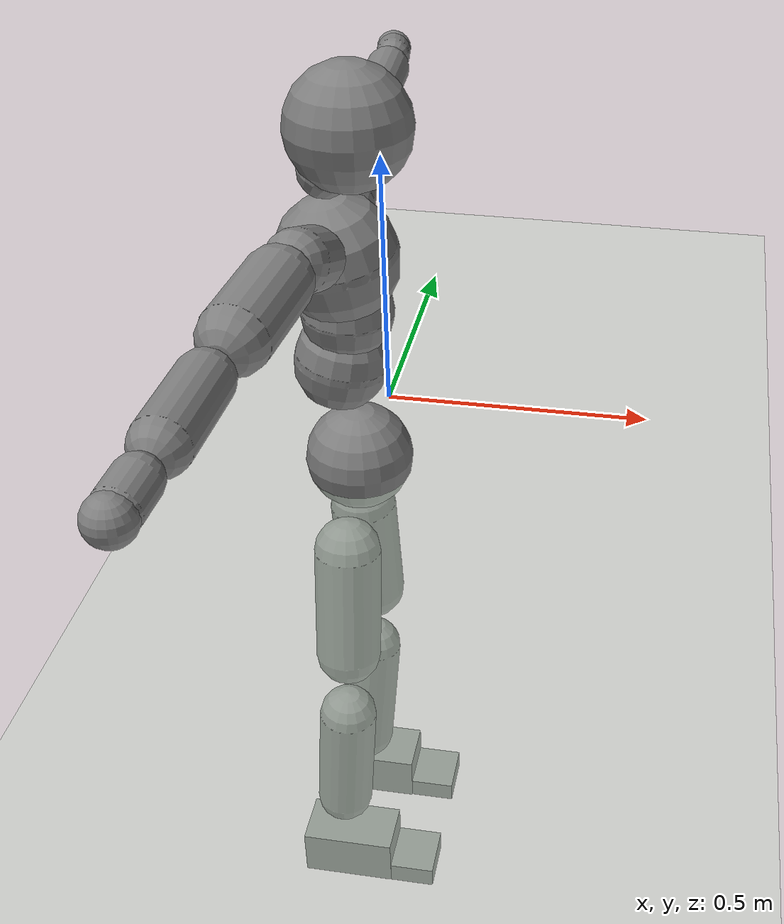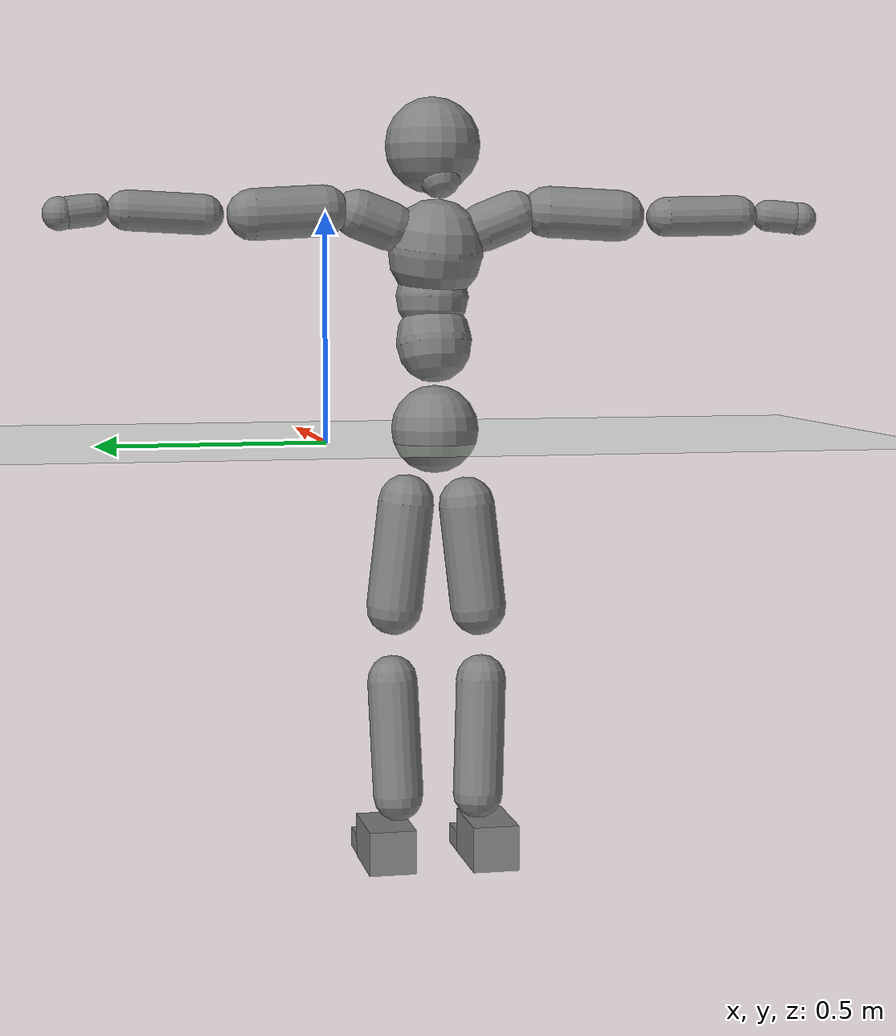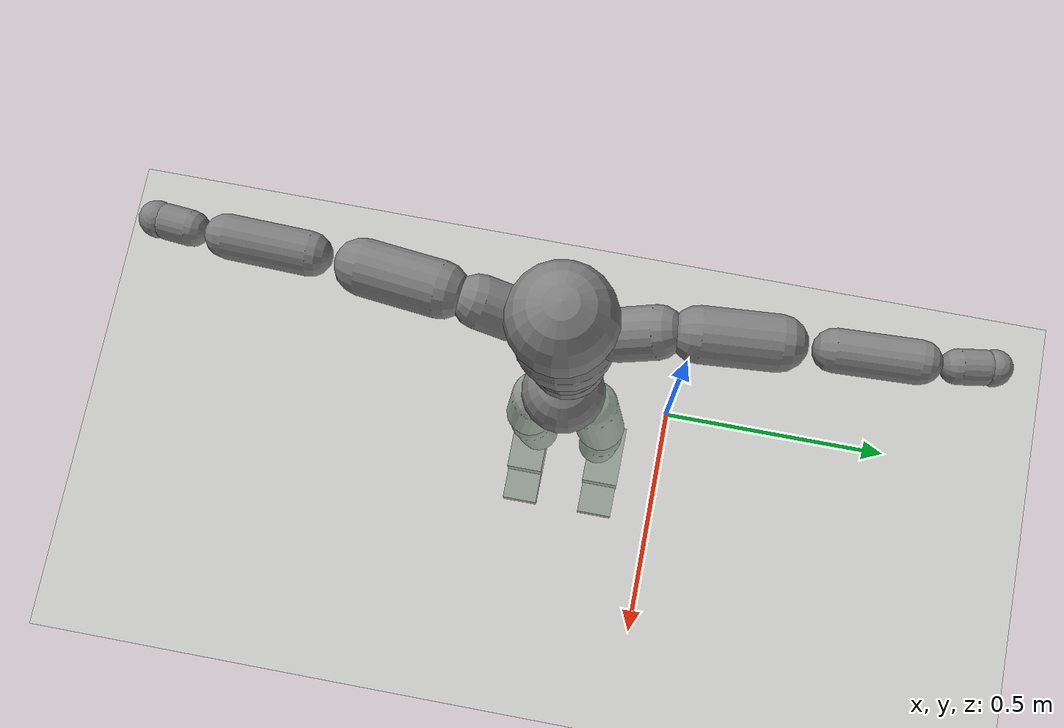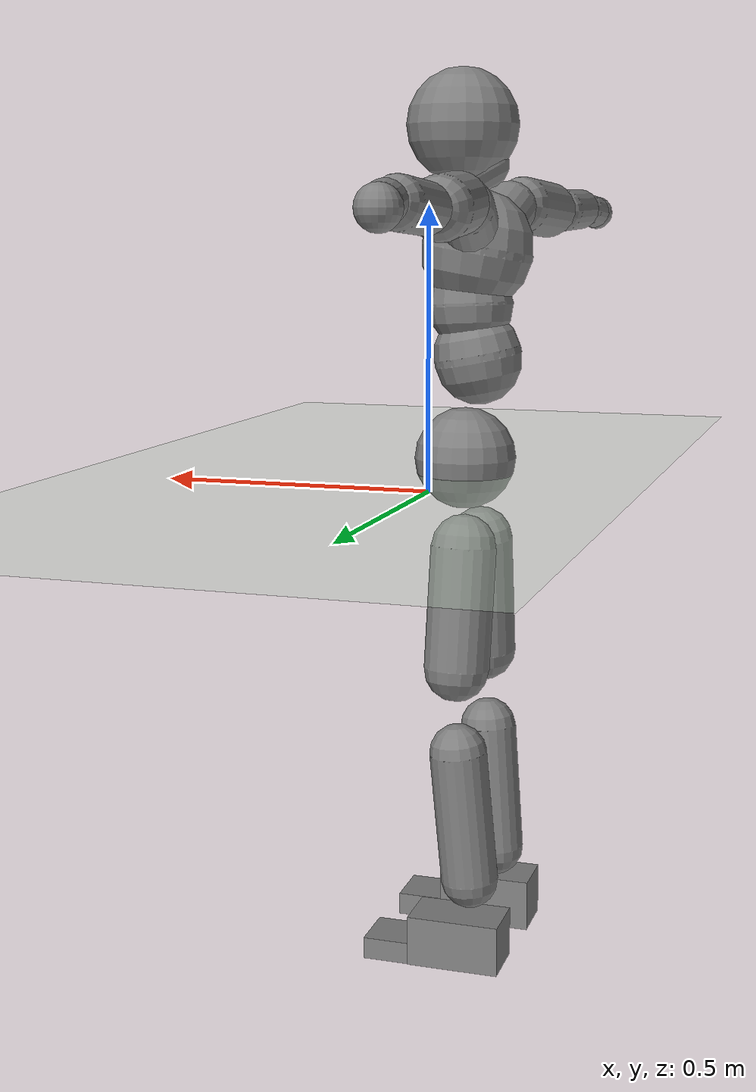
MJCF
<mujoco model="humanoid">
  <compiler coordinate="local" />
  <statistic extent="2" center="0 0 1" />
  <option timestep="0.00555" />
  <default>
    <motor ctrlrange="-1 1" ctrllimited="true" />
    <geom type="capsule" condim="1" friction="1.0 0.05 0.05" solimp=".9 .99 .003" solref=".015 1" />
    <joint type="hinge" damping="0.1" stiffness="5" armature=".007" limited="true" solimplimit="0 .99 .01" />
    <site size=".04" group="3" />
    <default class="force-torque">
      <site type="box" size=".01 .01 .02" rgba="1 0 0 1" />
    </default>
    <default class="touch">
      <site type="capsule" rgba="0 0 1 .3" />
    </default>
  </default>
  <asset>
    <texture type="skybox" builtin="gradient" rgb1=".4 .5 .6" rgb2="0 0 0" width="100" height="100" />
    <texture builtin="flat" height="1278" mark="cross" markrgb="1 1 1" name="texgeom" random="0.01" rgb1="0.8 0.6 0.4" rgb2="0.8 0.6 0.4" type="cube" width="127" />
    <texture builtin="checker" height="100" name="texplane" rgb1="0 0 0" rgb2="0.8 0.8 0.8" type="2d" width="100" />
    <material name="MatPlane" reflectance="0.5" shininess="1" specular="1" texrepeat="60 60" texture="texplane" />
    <material name="geom" texture="texgeom" texuniform="true" />
  </asset>
  <worldbody>
    <light cutoff="100" diffuse="1 1 1" dir="-0 0 -1.3" directional="true" exponent="1" pos="0 0 1.3" specular=".1 .1 .1" />
    <geom conaffinity="1" condim="3" name="floor" pos="0 0 0" rgba="0.8 0.9 0.8 1" size="100 100 .2" type="plane" material="MatPlane" />
    <body name="Pelvis" pos="-0.0022 -0.2408 0.0286">
      <freejoint name="Pelvis" />
      <geom type="sphere" contype="1" conaffinity="1" density="4629.6296296296305" size="0.0967" pos="0.0000 0.0000 0.0000" />
      <body name="L_Hip" pos="-0.0177 0.0586 -0.0823">
        <joint name="L_Hip_x" type="hinge" pos="0 0 0" axis="1 0 0" stiffness="800" damping="80" armature="0.02" range="-180.0000 180.0000" />
        <joint name="L_Hip_y" type="hinge" pos="0 0 0" axis="0 1 0" stiffness="800" damping="80" armature="0.02" range="-180.0000 180.0000" />
        <joint name="L_Hip_z" type="hinge" pos="0 0 0" axis="0 0 1" stiffness="800" damping="80" armature="0.02" range="-180.0000 180.0000" />
        <geom type="capsule" contype="1" conaffinity="1" density="2040.816327" fromto="0.0016 0.0087 -0.0773 0.0064 0.0348 -0.3092" size="0.062" />
        <body name="L_Knee" pos="0.008 0.0435 -0.3865">
          <joint name="L_Knee_x" type="hinge" pos="0 0 0" axis="1 0 0" stiffness="800" damping="80" armature="0.02" range="-180.0000 180.0000" />
          <joint name="L_Knee_y" type="hinge" pos="0 0 0" axis="0 1 0" stiffness="800" damping="80" armature="0.02" range="-180.0000 180.0000" />
          <joint name="L_Knee_z" type="hinge" pos="0 0 0" axis="0 0 1" stiffness="800" damping="80" armature="0.02" range="-180.0000 180.0000" />
          <geom type="capsule" contype="1" conaffinity="1" density="1234.567901" fromto="-0.0075 -0.0030 -0.0854 -0.0299 -0.0118 -0.3415" size="0.0552" />
          <body name="L_Ankle" pos="-0.0374 -0.0148 -0.4269">
            <joint name="L_Ankle_x" type="hinge" pos="0 0 0" axis="1 0 0" stiffness="800" damping="80" armature="0.02" range="-180.0000 180.0000" />
            <joint name="L_Ankle_y" type="hinge" pos="0 0 0" axis="0 1 0" stiffness="800" damping="80" armature="0.02" range="-180.0000 180.0000" />
            <joint name="L_Ankle_z" type="hinge" pos="0 0 0" axis="0 0 1" stiffness="800" damping="80" armature="0.02" range="-180.0000 180.0000" />
            <geom type="box" pos="0.0215 0.0282 -0.0243" size="0.0887 0.052 0.0482" quat="1.0000 0.0000 0.0000 0.0000" density="1000" />
            <body name="L_Toe" pos="0.122 0.0411 -0.0603">
              <joint name="L_Toe_x" type="hinge" pos="0 0 0" axis="1 0 0" stiffness="500" damping="50" armature="0.02" range="-180.0000 180.0000" />
              <joint name="L_Toe_y" type="hinge" pos="0 0 0" axis="0 1 0" stiffness="500" damping="50" armature="0.02" range="-180.0000 180.0000" />
              <joint name="L_Toe_z" type="hinge" pos="0 0 0" axis="0 0 1" stiffness="500" damping="50" armature="0.02" range="-180.0000 180.0000" />
              <geom type="box" pos="0.0254 -0.0129 0.0087" size="0.0515 0.0502 0.0209" quat="1.0000 0.0000 0.0000 0.0000" density="1000" />
            </body>
          </body>
        </body>
      </body>
      <body name="R_Hip" pos="-0.0135 -0.0603 -0.0905">
        <joint name="R_Hip_x" type="hinge" pos="0 0 0" axis="1 0 0" stiffness="800" damping="80" armature="0.02" range="-180.0000 180.0000" />
        <joint name="R_Hip_y" type="hinge" pos="0 0 0" axis="0 1 0" stiffness="800" damping="80" armature="0.02" range="-180.0000 180.0000" />
        <joint name="R_Hip_z" type="hinge" pos="0 0 0" axis="0 0 1" stiffness="800" damping="80" armature="0.02" range="-180.0000 180.0000" />
        <geom type="capsule" contype="1" conaffinity="1" density="2040.816327" fromto="-0.0010 -0.0087 -0.0767 -0.0039 -0.0346 -0.3070" size="0.0615" />
        <body name="R_Knee" pos="-0.0048 -0.0433 -0.3837">
          <joint name="R_Knee_x" type="hinge" pos="0 0 0" axis="1 0 0" stiffness="800" damping="80" armature="0.02" range="-180.0000 180.0000" />
          <joint name="R_Knee_y" type="hinge" pos="0 0 0" axis="0 1 0" stiffness="800" damping="80" armature="0.02" range="-180.0000 180.0000" />
          <joint name="R_Knee_z" type="hinge" pos="0 0 0" axis="0 0 1" stiffness="800" damping="80" armature="0.02" range="-180.0000 180.0000" />
          <geom type="capsule" contype="1" conaffinity="1" density="1234.567901" fromto="-0.0069 0.0038 -0.0840 -0.0276 0.0152 -0.3360" size="0.0554" />
          <body name="R_Ankle" pos="-0.0346 0.0191 -0.42">
            <joint name="R_Ankle_x" type="hinge" pos="0 0 0" axis="1 0 0" stiffness="800" damping="80" armature="0.02" range="-180.0000 180.0000" />
            <joint name="R_Ankle_y" type="hinge" pos="0 0 0" axis="0 1 0" stiffness="800" damping="80" armature="0.02" range="-180.0000 180.0000" />
            <joint name="R_Ankle_z" type="hinge" pos="0 0 0" axis="0 0 1" stiffness="800" damping="80" armature="0.02" range="-180.0000 180.0000" />
            <geom type="box" pos="0.0249 -0.0302 -0.0275" size="0.0908 0.0511 0.0503" quat="1.0000 0.0000 0.0000 0.0000" density="1000" />
            <body name="R_Toe" pos="0.1303 -0.0348 -0.0621">
              <joint name="R_Toe_x" type="hinge" pos="0 0 0" axis="1 0 0" stiffness="500" damping="50" armature="0.02" range="-180.0000 180.0000" />
              <joint name="R_Toe_y" type="hinge" pos="0 0 0" axis="0 1 0" stiffness="500" damping="50" armature="0.02" range="-180.0000 180.0000" />
              <joint name="R_Toe_z" type="hinge" pos="0 0 0" axis="0 0 1" stiffness="500" damping="50" armature="0.02" range="-180.0000 180.0000" />
              <geom type="box" pos="0.0215 0.0046 0.0061" size="0.052 0.0506 0.0219" quat="1.0000 0.0000 0.0000 0.0000" density="1000" />
            </body>
          </body>
        </body>
      </body>
      <body name="Torso" pos="-0.0384 0.0044 0.1244">
        <joint name="Torso_x" type="hinge" pos="0 0 0" axis="1 0 0" stiffness="1000" damping="100" armature="0.02" range="-180.0000 180.0000" />
        <joint name="Torso_y" type="hinge" pos="0 0 0" axis="0 1 0" stiffness="1000" damping="100" armature="0.02" range="-180.0000 180.0000" />
        <joint name="Torso_z" type="hinge" pos="0 0 0" axis="0 0 1" stiffness="1000" damping="100" armature="0.02" range="-180.0000 180.0000" />
        <geom type="capsule" contype="1" conaffinity="1" density="2040.816327" fromto="0.0121 0.0020 0.0621 0.0148 0.0025 0.0759" size="0.0826" />
        <body name="Spine" pos="0.0268 0.0045 0.138">
          <joint name="Spine_x" type="hinge" pos="0 0 0" axis="1 0 0" stiffness="1000" damping="100" armature="0.02" range="-180.0000 180.0000" />
          <joint name="Spine_y" type="hinge" pos="0 0 0" axis="0 1 0" stiffness="1000" damping="100" armature="0.02" range="-180.0000 180.0000" />
          <joint name="Spine_z" type="hinge" pos="0 0 0" axis="0 0 1" stiffness="1000" damping="100" armature="0.02" range="-180.0000 180.0000" />
          <geom type="capsule" contype="1" conaffinity="1" density="2040.816327" fromto="0.0013 -0.0010 0.0252 0.0016 -0.0012 0.0308" size="0.0803" />
          <body name="Chest" pos="0.0029 -0.0023 0.056">
            <joint name="Chest_x" type="hinge" pos="0 0 0" axis="1 0 0" stiffness="1000" damping="100" armature="0.02" range="-180.0000 180.0000" />
            <joint name="Chest_y" type="hinge" pos="0 0 0" axis="0 1 0" stiffness="1000" damping="100" armature="0.02" range="-180.0000 180.0000" />
            <joint name="Chest_z" type="hinge" pos="0 0 0" axis="0 0 1" stiffness="1000" damping="100" armature="0.02" range="-180.0000 180.0000" />
            <geom type="capsule" contype="1" conaffinity="1" density="2040.816327" fromto="-0.0114 -0.0037 0.0657 -0.0139 -0.0045 0.0803" size="0.1044" />
            <body name="Neck" pos="-0.0335 -0.0134 0.2116">
              <joint name="Neck_x" type="hinge" pos="0 0 0" axis="1 0 0" stiffness="500" damping="50" armature="0.02" range="-180.0000 180.0000" />
              <joint name="Neck_y" type="hinge" pos="0 0 0" axis="0 1 0" stiffness="500" damping="50" armature="0.02" range="-180.0000 180.0000" />
              <joint name="Neck_z" type="hinge" pos="0 0 0" axis="0 0 1" stiffness="500" damping="50" armature="0.02" range="-180.0000 180.0000" />
              <geom type="capsule" contype="1" conaffinity="1" density="1000" fromto="0.0101 0.0020 0.0178 0.0403 0.0081 0.0711" size="0.0455" />
              <body name="Head" pos="0.0504 0.0101 0.0889">
                <joint name="Head_x" type="hinge" pos="0 0 0" axis="1 0 0" stiffness="500" damping="50" armature="0.02" range="-180.0000 180.0000" />
                <joint name="Head_y" type="hinge" pos="0 0 0" axis="0 1 0" stiffness="500" damping="50" armature="0.02" range="-180.0000 180.0000" />
                <joint name="Head_z" type="hinge" pos="0 0 0" axis="0 0 1" stiffness="500" damping="50" armature="0.02" range="-180.0000 180.0000" />
                <geom type="sphere" contype="1" conaffinity="1" density="1000" size="0.1048" pos="0.0000 0.0000 0.0000" />
              </body>
            </body>
            <body name="L_Thorax" pos="-0.0189 0.0717 0.114">
              <joint name="L_Thorax_x" type="hinge" pos="0 0 0" axis="1 0 0" stiffness="500" damping="50" armature="0.02" range="-180.0000 180.0000" />
              <joint name="L_Thorax_y" type="hinge" pos="0 0 0" axis="0 1 0" stiffness="500" damping="50" armature="0.02" range="-180.0000 180.0000" />
              <joint name="L_Thorax_z" type="hinge" pos="0 0 0" axis="0 0 1" stiffness="500" damping="50" armature="0.02" range="-180.0000 180.0000" />
              <geom type="capsule" contype="1" conaffinity="1" density="1000" fromto="-0.0038 0.0246 0.0090 -0.0152 0.0983 0.0362" size="0.053" />
              <body name="L_Shoulder" pos="-0.019 0.1229 0.0452">
                <joint name="L_Shoulder_x" type="hinge" pos="0 0 0" axis="1 0 0" stiffness="500" damping="50" armature="0.02" range="-720.0000 720.0000" />
                <joint name="L_Shoulder_y" type="hinge" pos="0 0 0" axis="0 1 0" stiffness="500" damping="50" armature="0.02" range="-720.0000 720.0000" />
                <joint name="L_Shoulder_z" type="hinge" pos="0 0 0" axis="0 0 1" stiffness="500" damping="50" armature="0.02" range="-720.0000 720.0000" />
                <geom type="capsule" contype="1" conaffinity="1" density="1000" fromto="-0.0046 0.0511 -0.0031 -0.0184 0.2043 -0.0125" size="0.0553" />
                <body name="L_Elbow" pos="-0.0229 0.2553 -0.0156">
                  <joint name="L_Elbow_x" type="hinge" pos="0 0 0" axis="1 0 0" stiffness="500" damping="50" armature="0.02" range="-720.0000 720.0000" />
                  <joint name="L_Elbow_y" type="hinge" pos="0 0 0" axis="0 1 0" stiffness="500" damping="50" armature="0.02" range="-720.0000 720.0000" />
                  <joint name="L_Elbow_z" type="hinge" pos="0 0 0" axis="0 0 1" stiffness="500" damping="50" armature="0.02" range="-720.0000 720.0000" />
                  <geom type="capsule" contype="1" conaffinity="1" density="1000" fromto="-0.0015 0.0531 0.0025 -0.0059 0.2126 0.0102" size="0.0427" />
                  <body name="L_Wrist" pos="-0.0074 0.2657 0.0127">
                    <joint name="L_Wrist_x" type="hinge" pos="0 0 0" axis="1 0 0" stiffness="300" damping="30" armature="0.02" range="-180.0000 180.0000" />
                    <joint name="L_Wrist_y" type="hinge" pos="0 0 0" axis="0 1 0" stiffness="300" damping="30" armature="0.02" range="-180.0000 180.0000" />
                    <joint name="L_Wrist_z" type="hinge" pos="0 0 0" axis="0 0 1" stiffness="300" damping="30" armature="0.02" range="-180.0000 180.0000" />
                    <geom type="capsule" contype="1" conaffinity="1" density="1000" fromto="-0.0031 0.0173 -0.0021 -0.0125 0.0694 -0.0085" size="0.0342" />
                    <body name="L_Hand" pos="-0.0156 0.0867 -0.0106">
                      <joint name="L_Hand_x" type="hinge" pos="0 0 0" axis="1 0 0" stiffness="300" damping="30" armature="0.02" range="-180.0000 180.0000" />
                      <joint name="L_Hand_y" type="hinge" pos="0 0 0" axis="0 1 0" stiffness="300" damping="30" armature="0.02" range="-180.0000 180.0000" />
                      <joint name="L_Hand_z" type="hinge" pos="0 0 0" axis="0 0 1" stiffness="300" damping="30" armature="0.02" range="-180.0000 180.0000" />
                      <geom type="sphere" contype="1" conaffinity="1" density="1000" size="0.0356" pos="0.0000 0.0000 0.0000" />
                    </body>
                  </body>
                </body>
              </body>
            </body>
            <body name="R_Thorax" pos="-0.0237 -0.083 0.1125">
              <joint name="R_Thorax_x" type="hinge" pos="0 0 0" axis="1 0 0" stiffness="500" damping="50" armature="0.02" range="-180.0000 180.0000" />
              <joint name="R_Thorax_y" type="hinge" pos="0 0 0" axis="0 1 0" stiffness="500" damping="50" armature="0.02" range="-180.0000 180.0000" />
              <joint name="R_Thorax_z" type="hinge" pos="0 0 0" axis="0 0 1" stiffness="500" damping="50" armature="0.02" range="-180.0000 180.0000" />
              <geom type="capsule" contype="1" conaffinity="1" density="1000" fromto="-0.0017 -0.0226 0.0094 -0.0068 -0.0906 0.0375" size="0.0531" />
              <body name="R_Shoulder" pos="-0.0085 -0.1132 0.0469">
                <joint name="R_Shoulder_x" type="hinge" pos="0 0 0" axis="1 0 0" stiffness="500" damping="50" armature="0.02" range="-720.0000 720.0000" />
                <joint name="R_Shoulder_y" type="hinge" pos="0 0 0" axis="0 1 0" stiffness="500" damping="50" armature="0.02" range="-720.0000 720.0000" />
                <joint name="R_Shoulder_z" type="hinge" pos="0 0 0" axis="0 0 1" stiffness="500" damping="50" armature="0.02" range="-720.0000 720.0000" />
                <geom type="capsule" contype="1" conaffinity="1" density="1000" fromto="-0.0063 -0.0520 -0.0029 -0.0250 -0.2081 -0.0115" size="0.056" />
                <body name="R_Elbow" pos="-0.0313 -0.2601 -0.0144">
                  <joint name="R_Elbow_x" type="hinge" pos="0 0 0" axis="1 0 0" stiffness="500" damping="50" armature="0.02" range="-720.0000 720.0000" />
                  <joint name="R_Elbow_y" type="hinge" pos="0 0 0" axis="0 1 0" stiffness="500" damping="50" armature="0.02" range="-720.0000 720.0000" />
                  <joint name="R_Elbow_z" type="hinge" pos="0 0 0" axis="0 0 1" stiffness="500" damping="50" armature="0.02" range="-720.0000 720.0000" />
                  <geom type="capsule" contype="1" conaffinity="1" density="1000" fromto="-0.0012 -0.0538 0.0014 -0.0048 -0.2153 0.0054" size="0.0434" />
                  <body name="R_Wrist" pos="-0.006 -0.2691 0.0068">
                    <joint name="R_Wrist_x" type="hinge" pos="0 0 0" axis="1 0 0" stiffness="300" damping="30" armature="0.02" range="-180.0000 180.0000" />
                    <joint name="R_Wrist_y" type="hinge" pos="0 0 0" axis="0 1 0" stiffness="300" damping="30" armature="0.02" range="-180.0000 180.0000" />
                    <joint name="R_Wrist_z" type="hinge" pos="0 0 0" axis="0 0 1" stiffness="300" damping="30" armature="0.02" range="-180.0000 180.0000" />
                    <geom type="capsule" contype="1" conaffinity="1" density="1000" fromto="-0.0020 -0.0178 -0.0017 -0.0081 -0.0710 -0.0069" size="0.0348" />
                    <body name="R_Hand" pos="-0.0101 -0.0888 -0.0087">
                      <joint name="R_Hand_x" type="hinge" pos="0 0 0" axis="1 0 0" stiffness="300" damping="30" armature="0.02" range="-180.0000 180.0000" />
                      <joint name="R_Hand_y" type="hinge" pos="0 0 0" axis="0 1 0" stiffness="300" damping="30" armature="0.02" range="-180.0000 180.0000" />
                      <joint name="R_Hand_z" type="hinge" pos="0 0 0" axis="0 0 1" stiffness="300" damping="30" armature="0.02" range="-180.0000 180.0000" />
                      <geom type="sphere" contype="1" conaffinity="1" density="1000" size="0.0361" pos="0.0000 0.0000 0.0000" />
                    </body>
                  </body>
                </body>
              </body>
            </body>
          </body>
        </body>
      </body>
    </body>
  </worldbody>
  <actuator>
    <motor name="L_Hip_x" joint="L_Hip_x" gear="500" />
    <motor name="L_Hip_y" joint="L_Hip_y" gear="500" />
    <motor name="L_Hip_z" joint="L_Hip_z" gear="500" />
    <motor name="L_Knee_x" joint="L_Knee_x" gear="500" />
    <motor name="L_Knee_y" joint="L_Knee_y" gear="500" />
    <motor name="L_Knee_z" joint="L_Knee_z" gear="500" />
    <motor name="L_Ankle_x" joint="L_Ankle_x" gear="500" />
    <motor name="L_Ankle_y" joint="L_Ankle_y" gear="500" />
    <motor name="L_Ankle_z" joint="L_Ankle_z" gear="500" />
    <motor name="L_Toe_x" joint="L_Toe_x" gear="500" />
    <motor name="L_Toe_y" joint="L_Toe_y" gear="500" />
    <motor name="L_Toe_z" joint="L_Toe_z" gear="500" />
    <motor name="R_Hip_x" joint="R_Hip_x" gear="500" />
    <motor name="R_Hip_y" joint="R_Hip_y" gear="500" />
    <motor name="R_Hip_z" joint="R_Hip_z" gear="500" />
    <motor name="R_Knee_x" joint="R_Knee_x" gear="500" />
    <motor name="R_Knee_y" joint="R_Knee_y" gear="500" />
    <motor name="R_Knee_z" joint="R_Knee_z" gear="500" />
    <motor name="R_Ankle_x" joint="R_Ankle_x" gear="500" />
    <motor name="R_Ankle_y" joint="R_Ankle_y" gear="500" />
    <motor name="R_Ankle_z" joint="R_Ankle_z" gear="500" />
    <motor name="R_Toe_x" joint="R_Toe_x" gear="500" />
    <motor name="R_Toe_y" joint="R_Toe_y" gear="500" />
    <motor name="R_Toe_z" joint="R_Toe_z" gear="500" />
    <motor name="Torso_x" joint="Torso_x" gear="500" />
    <motor name="Torso_y" joint="Torso_y" gear="500" />
    <motor name="Torso_z" joint="Torso_z" gear="500" />
    <motor name="Spine_x" joint="Spine_x" gear="500" />
    <motor name="Spine_y" joint="Spine_y" gear="500" />
    <motor name="Spine_z" joint="Spine_z" gear="500" />
    <motor name="Chest_x" joint="Chest_x" gear="500" />
    <motor name="Chest_y" joint="Chest_y" gear="500" />
    <motor name="Chest_z" joint="Chest_z" gear="500" />
    <motor name="Neck_x" joint="Neck_x" gear="500" />
    <motor name="Neck_y" joint="Neck_y" gear="500" />
    <motor name="Neck_z" joint="Neck_z" gear="500" />
    <motor name="Head_x" joint="Head_x" gear="500" />
    <motor name="Head_y" joint="Head_y" gear="500" />
    <motor name="Head_z" joint="Head_z" gear="500" />
    <motor name="L_Thorax_x" joint="L_Thorax_x" gear="500" />
    <motor name="L_Thorax_y" joint="L_Thorax_y" gear="500" />
    <motor name="L_Thorax_z" joint="L_Thorax_z" gear="500" />
    <motor name="L_Shoulder_x" joint="L_Shoulder_x" gear="500" />
    <motor name="L_Shoulder_y" joint="L_Shoulder_y" gear="500" />
    <motor name="L_Shoulder_z" joint="L_Shoulder_z" gear="500" />
    <motor name="L_Elbow_x" joint="L_Elbow_x" gear="500" />
    <motor name="L_Elbow_y" joint="L_Elbow_y" gear="500" />
    <motor name="L_Elbow_z" joint="L_Elbow_z" gear="500" />
    <motor name="L_Wrist_x" joint="L_Wrist_x" gear="500" />
    <motor name="L_Wrist_y" joint="L_Wrist_y" gear="500" />
    <motor name="L_Wrist_z" joint="L_Wrist_z" gear="500" />
    <motor name="L_Hand_x" joint="L_Hand_x" gear="500" />
    <motor name="L_Hand_y" joint="L_Hand_y" gear="500" />
    <motor name="L_Hand_z" joint="L_Hand_z" gear="500" />
    <motor name="R_Thorax_x" joint="R_Thorax_x" gear="500" />
    <motor name="R_Thorax_y" joint="R_Thorax_y" gear="500" />
    <motor name="R_Thorax_z" joint="R_Thorax_z" gear="500" />
    <motor name="R_Shoulder_x" joint="R_Shoulder_x" gear="500" />
    <motor name="R_Shoulder_y" joint="R_Shoulder_y" gear="500" />
    <motor name="R_Shoulder_z" joint="R_Shoulder_z" gear="500" />
    <motor name="R_Elbow_x" joint="R_Elbow_x" gear="500" />
    <motor name="R_Elbow_y" joint="R_Elbow_y" gear="500" />
    <motor name="R_Elbow_z" joint="R_Elbow_z" gear="500" />
    <motor name="R_Wrist_x" joint="R_Wrist_x" gear="500" />
    <motor name="R_Wrist_y" joint="R_Wrist_y" gear="500" />
    <motor name="R_Wrist_z" joint="R_Wrist_z" gear="500" />
    <motor name="R_Hand_x" joint="R_Hand_x" gear="500" />
    <motor name="R_Hand_y" joint="R_Hand_y" gear="500" />
    <motor name="R_Hand_z" joint="R_Hand_z" gear="500" />
  </actuator>
  <contact />
  <size njmax="700" nconmax="700" />
</mujoco>
